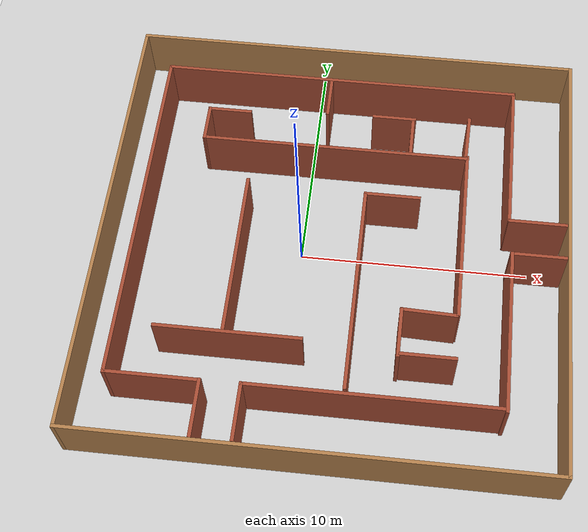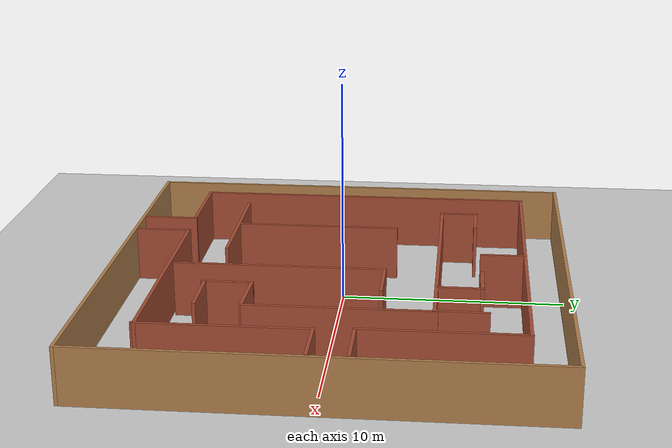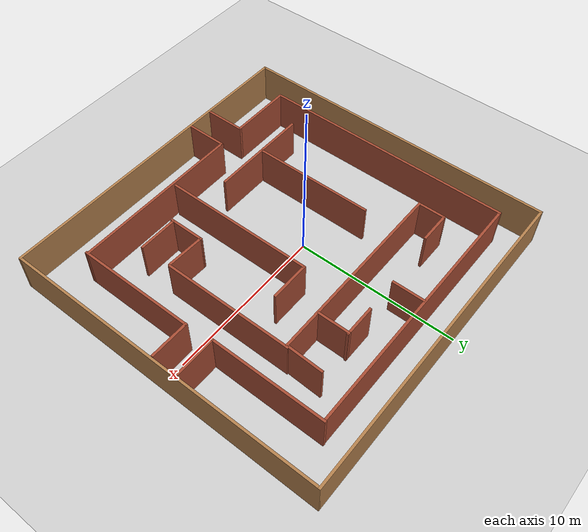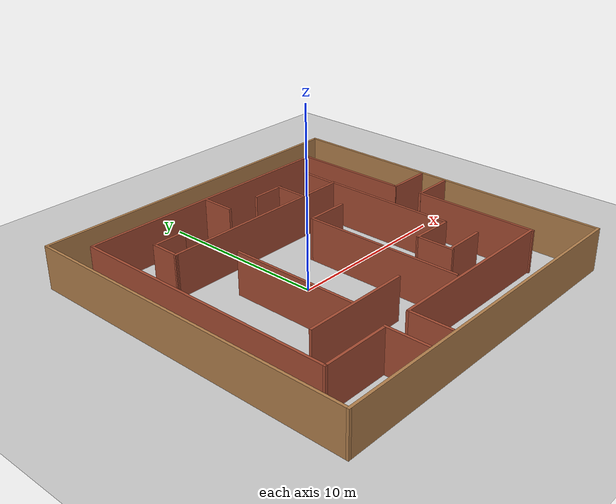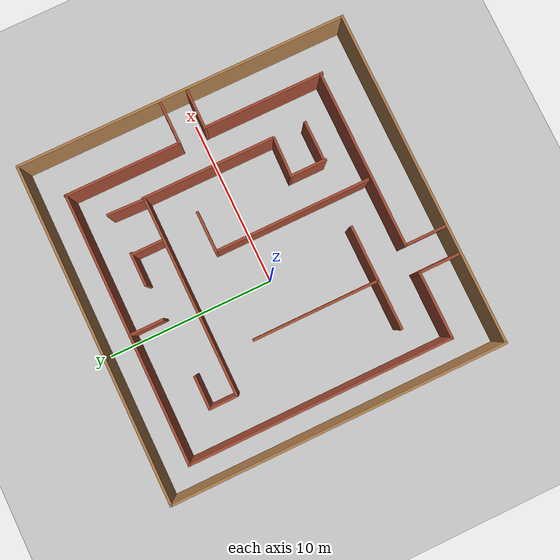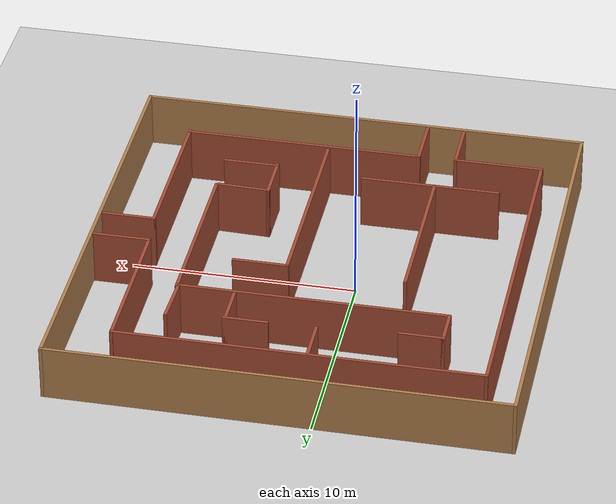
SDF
<?xml version="1.0" ?>

<sdf version="1.8">
  <world name="simple_maze">
    <physics name="1ms" type="ignored">
      <max_step_size>0.001</max_step_size>
      <real_time_factor>1.0</real_time_factor>
      <real_time_update_rate>1000</real_time_update_rate>
    </physics>
    <plugin
      filename="gz-sim-physics-system"
      name="gz::sim::systems::Physics">
    </plugin>
    <plugin
      filename="gz-sim-user-commands-system"
      name="gz::sim::systems::UserCommands">
    </plugin>
    <plugin
      filename="gz-sim-scene-broadcaster-system"
      name="gz::sim::systems::SceneBroadcaster">
    </plugin>
    <plugin
      filename="gz-sim-contact-system"
      name="gz::sim::systems::Contact">
    </plugin>

    <plugin
      filename="gz-sim-sensors-system"
      name="gz::sim::systems::Sensors">
      <render_engine>ogre2</render_engine>
    </plugin>
    <plugin
      filename="gz-sim-imu-system"
      name="gz::sim::systems::Imu">
    </plugin>

    <light type="directional" name="sun">
      <cast_shadows>true</cast_shadows>
      <pose>0 0 10 0 0 0</pose>
      <diffuse>0.8 0.8 0.8 1</diffuse>
      <specular>0.2 0.2 0.2 1</specular>
      <attenuation>
        <range>1000</range>
        <constant>0.9</constant>
        <linear>0.01</linear>
        <quadratic>0.001</quadratic>
      </attenuation>
      <direction>-0.5 0.1 -0.9</direction>
    </light>

    <gravity>0 0 -9.8000000000000007</gravity>
    <magnetic_field>5.5644999999999998e-06 2.2875799999999999e-05 -4.2388400000000002e-05</magnetic_field>
    <atmosphere type='adiabatic'/>
    <scene>
      <ambient>0.400000006 0.400000006 0.400000006 1</ambient>
      <background>0.699999988 0.699999988 0.699999988 1</background>
      <shadows>true</shadows>
    </scene>

    <model name="ground_plane">
      <static>true</static>
      <link name="link">
        <collision name="collision">
          <geometry>
            <plane>
              <normal>0 0 1</normal>
              <size>100 100</size>
            </plane>
          </geometry>
          <surface>
            <friction>
              <ode>
                <mu>50</mu>
              </ode>
            </friction>
            <bounce/>
            <contact/>
          </surface>
        </collision>
        <visual name="visual">
          <geometry>
            <plane>
              <normal>0 0 1</normal>
              <size>100 100</size>
            </plane>
          </geometry>
          <material>
            <ambient>0.8 0.8 0.8 1</ambient>
            <diffuse>0.8 0.8 0.8 1</diffuse>
            <specular>0.8 0.8 0.8 1</specular>
          </material>
        </visual>
      </link>
    </model>

    <include>
      <uri>simple_maze</uri>
      <pose>1.5 0.0 0.0 0 0 0</pose>
  </include>

  </world>
</sdf>
